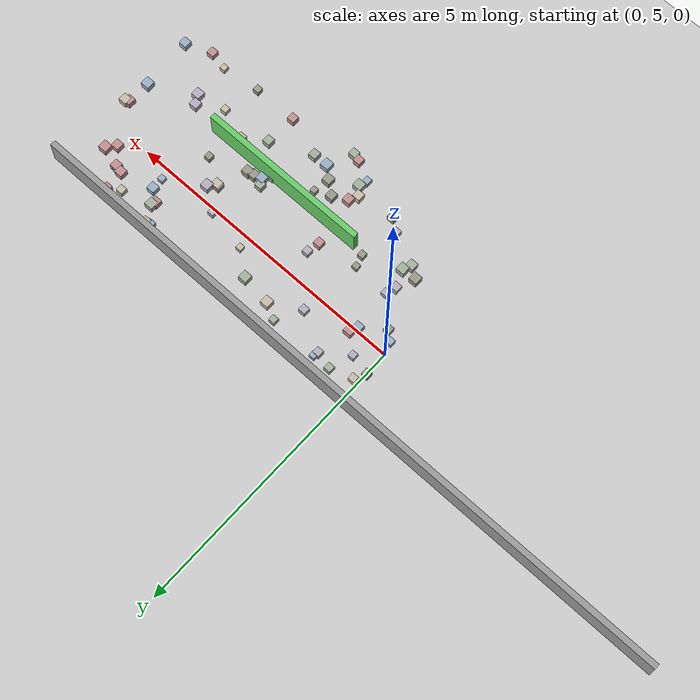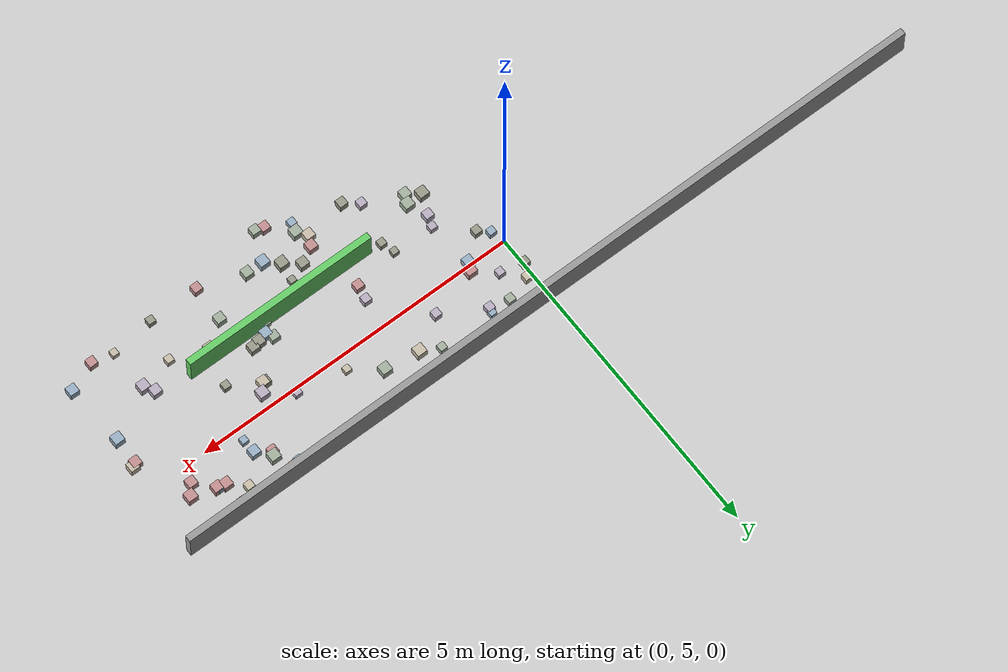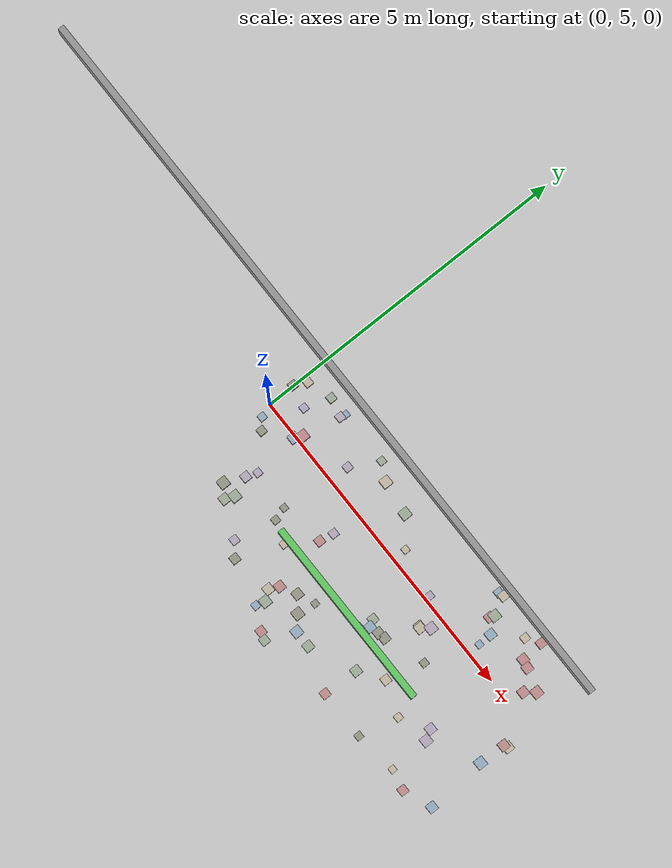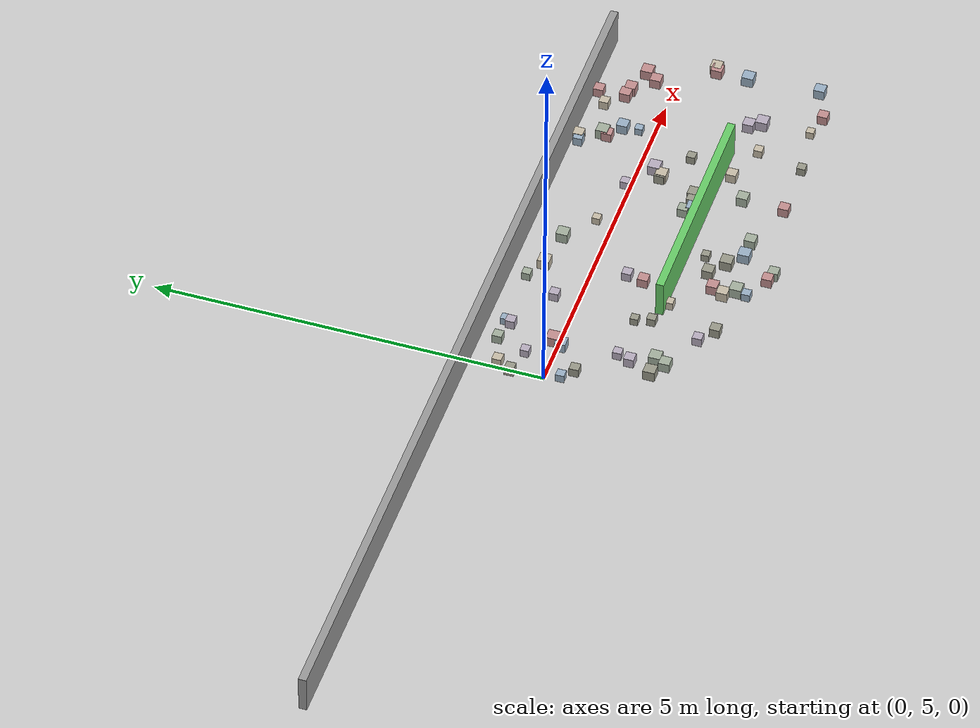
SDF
<sdf version="1.6">
 <world name="small_maze_world">
  <include><uri>model://ground_plane</uri></include>
  <include><uri>model://sun</uri></include>
  <model name="wall_north">
   <static>true</static>
   <pose>0 6 0.25 0 0 0</pose>
   <link name="link">
    <collision name="collision"><geometry><box><size>12 0.1 0.5</size></box></geometry></collision>
    <visual name="visual">
     <geometry><box><size>12 0.1 0.5</size></box></geometry>
     <material><ambient>0.6 0.6 0.6 1</ambient></material>
    </visual>
   </link>
  </model>
  <model name="maze_wall_3">
   <static>true</static>
   <pose>3 4 0.25 0 0 0</pose>
   <link name="link">
    <collision name="collision"><geometry><box><size>3 0.1 0.5</size></box></geometry></collision>
    <visual name="visual">
     <geometry><box><size>3 0.1 0.5</size></box></geometry>
     <material><ambient>0.4 0.8 0.4 1</ambient></material>
    </visual>
   </link>
  </model>
  <model name="box_9">
   <static>false</static>
   <pose>5.86 3.24 0.05 0 0 0</pose>
   <link name="link">
    <inertial>
     <mass>0.2</mass>
     <inertia><ixx>0.001</ixx><iyy>0.001</iyy><izz>0.001</izz><ixy>0</ixy><ixz>0</ixz><iyz>0</iyz></inertia>
    </inertial>
    <collision name="collision"><geometry><box><size>0.14 0.14 0.14</size></box></geometry></collision>
    <visual name="visual">
     <geometry><box><size>0.14 0.14 0.14</size></box></geometry>
     <material><ambient>0.6 0.69 0.77 1</ambient><diffuse>0.6 0.69 0.77 1</diffuse></material>
    </visual>
   </link>
  </model>
  <model name="box_12">
   <static>false</static>
   <pose>5.52 5.4 0.05 0 0 0</pose>
   <link name="link">
    <inertial>
     <mass>0.2</mass>
     <inertia><ixx>0.001</ixx><iyy>0.001</iyy><izz>0.001</izz><ixy>0</ixy><ixz>0</ixz><iyz>0</iyz></inertia>
    </inertial>
    <collision name="collision"><geometry><box><size>0.15 0.15 0.15</size></box></geometry></collision>
    <visual name="visual">
     <geometry><box><size>0.15 0.15 0.15</size></box></geometry>
     <material><ambient>0.76 0.56 0.56 1</ambient><diffuse>0.76 0.56 0.56 1</diffuse></material>
    </visual>
   </link>
  </model>
  <model name="box_13">
   <static>false</static>
   <pose>5.4 5.25 0.05 0 0 0</pose>
   <link name="link">
    <inertial>
     <mass>0.2</mass>
     <inertia><ixx>0.001</ixx><iyy>0.001</iyy><izz>0.001</izz><ixy>0</ixy><ixz>0</ixz><iyz>0</iyz></inertia>
    </inertial>
    <collision name="collision"><geometry><box><size>0.14 0.14 0.14</size></box></geometry></collision>
    <visual name="visual">
     <geometry><box><size>0.14 0.14 0.14</size></box></geometry>
     <material><ambient>0.76 0.56 0.56 1</ambient><diffuse>0.76 0.56 0.56 1</diffuse></material>
    </visual>
   </link>
  </model>
  <model name="box_16">
   <static>false</static>
   <pose>4.82 5.75 0.05 0 0 0</pose>
   <link name="link">
    <inertial>
     <mass>0.2</mass>
     <inertia><ixx>0.001</ixx><iyy>0.001</iyy><izz>0.001</izz><ixy>0</ixy><ixz>0</ixz><iyz>0</iyz></inertia>
    </inertial>
    <collision name="collision"><geometry><box><size>0.12 0.12 0.12</size></box></geometry></collision>
    <visual name="visual">
     <geometry><box><size>0.12 0.12 0.12</size></box></geometry>
     <material><ambient>0.78 0.74 0.66 1</ambient><diffuse>0.78 0.74 0.66 1</diffuse></material>
    </visual>
   </link>
  </model>
  <model name="box_20">
   <static>false</static>
   <pose>0.59 4.09 0.05 0 0 0</pose>
   <link name="link">
    <inertial>
     <mass>0.2</mass>
     <inertia><ixx>0.001</ixx><iyy>0.001</iyy><izz>0.001</izz><ixy>0</ixy><ixz>0</ixz><iyz>0</iyz></inertia>
    </inertial>
    <collision name="collision"><geometry><box><size>0.13 0.13 0.13</size></box></geometry></collision>
    <visual name="visual">
     <geometry><box><size>0.13 0.13 0.13</size></box></geometry>
     <material><ambient>0.72 0.68 0.75 1</ambient><diffuse>0.72 0.68 0.75 1</diffuse></material>
    </visual>
   </link>
  </model>
  <model name="box_22">
   <static>false</static>
   <pose>2.6 3.74 0.05 0 0 0</pose>
   <link name="link">
    <inertial>
     <mass>0.2</mass>
     <inertia><ixx>0.001</ixx><iyy>0.001</iyy><izz>0.001</izz><ixy>0</ixy><ixz>0</ixz><iyz>0</iyz></inertia>
    </inertial>
    <collision name="collision"><geometry><box><size>0.1 0.1 0.1</size></box></geometry></collision>
    <visual name="visual">
     <geometry><box><size>0.1 0.1 0.1</size></box></geometry>
     <material><ambient>0.6 0.6 0.54 1</ambient><diffuse>0.6 0.6 0.54 1</diffuse></material>
    </visual>
   </link>
  </model>
  <model name="box_24">
   <static>false</static>
   <pose>1.4 3.25 0.05 0 0 0</pose>
   <link name="link">
    <inertial>
     <mass>0.2</mass>
     <inertia><ixx>0.001</ixx><iyy>0.001</iyy><izz>0.001</izz><ixy>0</ixy><ixz>0</ixz><iyz>0</iyz></inertia>
    </inertial>
    <collision name="collision"><geometry><box><size>0.13 0.13 0.13</size></box></geometry></collision>
    <visual name="visual">
     <geometry><box><size>0.13 0.13 0.13</size></box></geometry>
     <material><ambient>0.6 0.6 0.54 1</ambient><diffuse>0.6 0.6 0.54 1</diffuse></material>
    </visual>
   </link>
  </model>
  <model name="box_25">
   <static>false</static>
   <pose>3.01 3.29 0.05 0 0 0</pose>
   <link name="link">
    <inertial>
     <mass>0.2</mass>
     <inertia><ixx>0.001</ixx><iyy>0.001</iyy><izz>0.001</izz><ixy>0</ixy><ixz>0</ixz><iyz>0</iyz></inertia>
    </inertial>
    <collision name="collision"><geometry><box><size>0.14 0.14 0.14</size></box></geometry></collision>
    <visual name="visual">
     <geometry><box><size>0.14 0.14 0.14</size></box></geometry>
     <material><ambient>0.64 0.69 0.62 1</ambient><diffuse>0.64 0.69 0.62 1</diffuse></material>
    </visual>
   </link>
  </model>
  <model name="box_31">
   <static>false</static>
   <pose>0.78 5.74 0.05 0 0 0</pose>
   <link name="link">
    <inertial>
     <mass>0.2</mass>
     <inertia><ixx>0.001</ixx><iyy>0.001</iyy><izz>0.001</izz><ixy>0</ixy><ixz>0</ixz><iyz>0</iyz></inertia>
    </inertial>
    <collision name="collision"><geometry><box><size>0.1 0.1 0.1</size></box></geometry></collision>
    <visual name="visual">
     <geometry><box><size>0.1 0.1 0.1</size></box></geometry>
     <material><ambient>0.6 0.69 0.77 1</ambient><diffuse>0.6 0.69 0.77 1</diffuse></material>
    </visual>
   </link>
  </model>
  <model name="box_46">
   <static>false</static>
   <pose>0.22 4.67 0.05 0 0 0</pose>
   <link name="link">
    <inertial>
     <mass>0.2</mass>
     <inertia><ixx>0.001</ixx><iyy>0.001</iyy><izz>0.001</izz><ixy>0</ixy><ixz>0</ixz><iyz>0</iyz></inertia>
    </inertial>
    <collision name="collision"><geometry><box><size>0.12 0.12 0.12</size></box></geometry></collision>
    <visual name="visual">
     <geometry><box><size>0.12 0.12 0.12</size></box></geometry>
     <material><ambient>0.6 0.6 0.54 1</ambient><diffuse>0.6 0.6 0.54 1</diffuse></material>
    </visual>
   </link>
  </model>
  <model name="box_49">
   <static>false</static>
   <pose>2.43 2.9 0.05 0 0 0</pose>
   <link name="link">
    <inertial>
     <mass>0.2</mass>
     <inertia><ixx>0.001</ixx><iyy>0.001</iyy><izz>0.001</izz><ixy>0</ixy><ixz>0</ixz><iyz>0</iyz></inertia>
    </inertial>
    <collision name="collision"><geometry><box><size>0.13 0.13 0.13</size></box></geometry></collision>
    <visual name="visual">
     <geometry><box><size>0.13 0.13 0.13</size></box></geometry>
     <material><ambient>0.76 0.56 0.56 1</ambient><diffuse>0.76 0.56 0.56 1</diffuse></material>
    </visual>
   </link>
  </model>
  <model name="box_53">
   <static>false</static>
   <pose>2.1 3.5 0.05 0 0 0</pose>
   <link name="link">
    <inertial>
     <mass>0.2</mass>
     <inertia><ixx>0.001</ixx><iyy>0.001</iyy><izz>0.001</izz><ixy>0</ixy><ixz>0</ixz><iyz>0</iyz></inertia>
    </inertial>
    <collision name="collision"><geometry><box><size>0.14 0.14 0.14</size></box></geometry></collision>
    <visual name="visual">
     <geometry><box><size>0.14 0.14 0.14</size></box></geometry>
     <material><ambient>0.76 0.56 0.56 1</ambient><diffuse>0.76 0.56 0.56 1</diffuse></material>
    </visual>
   </link>
  </model>
  <model name="box_54">
   <static>false</static>
   <pose>2.1 3.07 0.05 0 0 0</pose>
   <link name="link">
    <inertial>
     <mass>0.2</mass>
     <inertia><ixx>0.001</ixx><iyy>0.001</iyy><izz>0.001</izz><ixy>0</ixy><ixz>0</ixz><iyz>0</iyz></inertia>
    </inertial>
    <collision name="collision"><geometry><box><size>0.11 0.11 0.11</size></box></geometry></collision>
    <visual name="visual">
     <geometry><box><size>0.11 0.11 0.11</size></box></geometry>
     <material><ambient>0.6 0.69 0.77 1</ambient><diffuse>0.6 0.69 0.77 1</diffuse></material>
    </visual>
   </link>
  </model>
  <model name="box_59">
   <static>false</static>
   <pose>1.19 3.41 0.05 0 0 0</pose>
   <link name="link">
    <inertial>
     <mass>0.2</mass>
     <inertia><ixx>0.001</ixx><iyy>0.001</iyy><izz>0.001</izz><ixy>0</ixy><ixz>0</ixz><iyz>0</iyz></inertia>
    </inertial>
    <collision name="collision"><geometry><box><size>0.12 0.12 0.12</size></box></geometry></collision>
    <visual name="visual">
     <geometry><box><size>0.12 0.12 0.12</size></box></geometry>
     <material><ambient>0.72 0.68 0.75 1</ambient><diffuse>0.72 0.68 0.75 1</diffuse></material>
    </visual>
   </link>
  </model>
  <model name="box_71">
   <static>false</static>
   <pose>3.28 4.24 0.05 0 0 0</pose>
   <link name="link">
    <inertial>
     <mass>0.2</mass>
     <inertia><ixx>0.001</ixx><iyy>0.001</iyy><izz>0.001</izz><ixy>0</ixy><ixz>0</ixz><iyz>0</iyz></inertia>
    </inertial>
    <collision name="collision"><geometry><box><size>0.13 0.13 0.13</size></box></geometry></collision>
    <visual name="visual">
     <geometry><box><size>0.13 0.13 0.13</size></box></geometry>
     <material><ambient>0.64 0.69 0.62 1</ambient><diffuse>0.64 0.69 0.62 1</diffuse></material>
    </visual>
   </link>
  </model>
  <model name="box_83">
   <static>false</static>
   <pose>5.87 4.6 0.05 0 0 0</pose>
   <link name="link">
    <inertial>
     <mass>0.2</mass>
     <inertia><ixx>0.001</ixx><iyy>0.001</iyy><izz>0.001</izz><ixy>0</ixy><ixz>0</ixz><iyz>0</iyz></inertia>
    </inertial>
    <collision name="collision"><geometry><box><size>0.14 0.14 0.14</size></box></geometry></collision>
    <visual name="visual">
     <geometry><box><size>0.14 0.14 0.14</size></box></geometry>
     <material><ambient>0.78 0.74 0.66 1</ambient><diffuse>0.78 0.74 0.66 1</diffuse></material>
    </visual>
   </link>
  </model>
  <model name="box_84">
   <static>false</static>
   <pose>5.08 3.76 0.05 0 0 0</pose>
   <link name="link">
    <inertial>
     <mass>0.2</mass>
     <inertia><ixx>0.001</ixx><iyy>0.001</iyy><izz>0.001</izz><ixy>0</ixy><ixz>0</ixz><iyz>0</iyz></inertia>
    </inertial>
    <collision name="collision"><geometry><box><size>0.15 0.15 0.15</size></box></geometry></collision>
    <visual name="visual">
     <geometry><box><size>0.15 0.15 0.15</size></box></geometry>
     <material><ambient>0.72 0.68 0.75 1</ambient><diffuse>0.72 0.68 0.75 1</diffuse></material>
    </visual>
   </link>
  </model>
  <model name="box_88">
   <static>false</static>
   <pose>4.44 3.06 0.05 0 0 0</pose>
   <link name="link">
    <inertial>
     <mass>0.2</mass>
     <inertia><ixx>0.001</ixx><iyy>0.001</iyy><izz>0.001</izz><ixy>0</ixy><ixz>0</ixz><iyz>0</iyz></inertia>
    </inertial>
    <collision name="collision"><geometry><box><size>0.11 0.11 0.11</size></box></geometry></collision>
    <visual name="visual">
     <geometry><box><size>0.11 0.11 0.11</size></box></geometry>
     <material><ambient>0.6 0.6 0.54 1</ambient><diffuse>0.6 0.6 0.54 1</diffuse></material>
    </visual>
   </link>
  </model>
  <model name="box_98">
   <static>false</static>
   <pose>1.99 4.56 0.05 0 0 0</pose>
   <link name="link">
    <inertial>
     <mass>0.2</mass>
     <inertia><ixx>0.001</ixx><iyy>0.001</iyy><izz>0.001</izz><ixy>0</ixy><ixz>0</ixz><iyz>0</iyz></inertia>
    </inertial>
    <collision name="collision"><geometry><box><size>0.12 0.12 0.12</size></box></geometry></collision>
    <visual name="visual">
     <geometry><box><size>0.12 0.12 0.12</size></box></geometry>
     <material><ambient>0.72 0.68 0.75 1</ambient><diffuse>0.72 0.68 0.75 1</diffuse></material>
    </visual>
   </link>
  </model>
  <model name="box_109">
   <static>false</static>
   <pose>2.34 3.63 0.05 0 0 0</pose>
   <link name="link">
    <inertial>
     <mass>0.2</mass>
     <inertia><ixx>0.001</ixx><iyy>0.001</iyy><izz>0.001</izz><ixy>0</ixy><ixz>0</ixz><iyz>0</iyz></inertia>
    </inertial>
    <collision name="collision"><geometry><box><size>0.14 0.14 0.14</size></box></geometry></collision>
    <visual name="visual">
     <geometry><box><size>0.14 0.14 0.14</size></box></geometry>
     <material><ambient>0.6 0.6 0.54 1</ambient><diffuse>0.6 0.6 0.54 1</diffuse></material>
    </visual>
   </link>
  </model>
  <model name="box_116">
   <static>false</static>
   <pose>1.27 4.24 0.05 0 0 0</pose>
   <link name="link">
    <inertial>
     <mass>0.2</mass>
     <inertia><ixx>0.001</ixx><iyy>0.001</iyy><izz>0.001</izz><ixy>0</ixy><ixz>0</ixz><iyz>0</iyz></inertia>
    </inertial>
    <collision name="collision"><geometry><box><size>0.1 0.1 0.1</size></box></geometry></collision>
    <visual name="visual">
     <geometry><box><size>0.1 0.1 0.1</size></box></geometry>
     <material><ambient>0.6 0.6 0.54 1</ambient><diffuse>0.6 0.6 0.54 1</diffuse></material>
    </visual>
   </link>
  </model>
  <model name="box_121">
   <static>false</static>
   <pose>4.17 5.88 0.05 0 0 0</pose>
   <link name="link">
    <inertial>
     <mass>0.2</mass>
     <inertia><ixx>0.001</ixx><iyy>0.001</iyy><izz>0.001</izz><ixy>0</ixy><ixz>0</ixz><iyz>0</iyz></inertia>
    </inertial>
    <collision name="collision"><geometry><box><size>0.13 0.13 0.13</size></box></geometry></collision>
    <visual name="visual">
     <geometry><box><size>0.13 0.13 0.13</size></box></geometry>
     <material><ambient>0.78 0.74 0.66 1</ambient><diffuse>0.78 0.74 0.66 1</diffuse></material>
    </visual>
   </link>
  </model>
  <model name="box_122">
   <static>false</static>
   <pose>2.56 2.86 0.05 0 0 0</pose>
   <link name="link">
    <inertial>
     <mass>0.2</mass>
     <inertia><ixx>0.001</ixx><iyy>0.001</iyy><izz>0.001</izz><ixy>0</ixy><ixz>0</ixz><iyz>0</iyz></inertia>
    </inertial>
    <collision name="collision"><geometry><box><size>0.13 0.13 0.13</size></box></geometry></collision>
    <visual name="visual">
     <geometry><box><size>0.13 0.13 0.13</size></box></geometry>
     <material><ambient>0.64 0.69 0.62 1</ambient><diffuse>0.64 0.69 0.62 1</diffuse></material>
    </visual>
   </link>
  </model>
  <model name="box_123">
   <static>false</static>
   <pose>3.79 4.68 0.05 0 0 0</pose>
   <link name="link">
    <inertial>
     <mass>0.2</mass>
     <inertia><ixx>0.001</ixx><iyy>0.001</iyy><izz>0.001</izz><ixy>0</ixy><ixz>0</ixz><iyz>0</iyz></inertia>
    </inertial>
    <collision name="collision"><geometry><box><size>0.14 0.14 0.14</size></box></geometry></collision>
    <visual name="visual">
     <geometry><box><size>0.14 0.14 0.14</size></box></geometry>
     <material><ambient>0.78 0.74 0.66 1</ambient><diffuse>0.78 0.74 0.66 1</diffuse></material>
    </visual>
   </link>
  </model>
  <model name="box_132">
   <static>false</static>
   <pose>3.24 4.02 0.05 0 0 0</pose>
   <link name="link">
    <inertial>
     <mass>0.2</mass>
     <inertia><ixx>0.001</ixx><iyy>0.001</iyy><izz>0.001</izz><ixy>0</ixy><ixz>0</ixz><iyz>0</iyz></inertia>
    </inertial>
    <collision name="collision"><geometry><box><size>0.1 0.1 0.1</size></box></geometry></collision>
    <visual name="visual">
     <geometry><box><size>0.1 0.1 0.1</size></box></geometry>
     <material><ambient>0.64 0.69 0.62 1</ambient><diffuse>0.64 0.69 0.62 1</diffuse></material>
    </visual>
   </link>
  </model>
  <model name="box_134">
   <static>false</static>
   <pose>3.7 3.6 0.05 0 0 0</pose>
   <link name="link">
    <inertial>
     <mass>0.2</mass>
     <inertia><ixx>0.001</ixx><iyy>0.001</iyy><izz>0.001</izz><ixy>0</ixy><ixz>0</ixz><iyz>0</iyz></inertia>
    </inertial>
    <collision name="collision"><geometry><box><size>0.14 0.14 0.14</size></box></geometry></collision>
    <visual name="visual">
     <geometry><box><size>0.14 0.14 0.14</size></box></geometry>
     <material><ambient>0.64 0.69 0.62 1</ambient><diffuse>0.64 0.69 0.62 1</diffuse></material>
    </visual>
   </link>
  </model>
  <model name="box_140">
   <static>false</static>
   <pose>0.34 5.34 0.05 0 0 0</pose>
   <link name="link">
    <inertial>
     <mass>0.2</mass>
     <inertia><ixx>0.001</ixx><iyy>0.001</iyy><izz>0.001</izz><ixy>0</ixy><ixz>0</ixz><iyz>0</iyz></inertia>
    </inertial>
    <collision name="collision"><geometry><box><size>0.11 0.11 0.11</size></box></geometry></collision>
    <visual name="visual">
     <geometry><box><size>0.11 0.11 0.11</size></box></geometry>
     <material><ambient>0.72 0.68 0.75 1</ambient><diffuse>0.72 0.68 0.75 1</diffuse></material>
    </visual>
   </link>
  </model>
  <model name="box_147">
   <static>false</static>
   <pose>4.58 3.66 0.05 0 0 0</pose>
   <link name="link">
    <inertial>
     <mass>0.2</mass>
     <inertia><ixx>0.001</ixx><iyy>0.001</iyy><izz>0.001</izz><ixy>0</ixy><ixz>0</ixz><iyz>0</iyz></inertia>
    </inertial>
    <collision name="collision"><geometry><box><size>0.11 0.11 0.11</size></box></geometry></collision>
    <visual name="visual">
     <geometry><box><size>0.11 0.11 0.11</size></box></geometry>
     <material><ambient>0.78 0.74 0.66 1</ambient><diffuse>0.78 0.74 0.66 1</diffuse></material>
    </visual>
   </link>
  </model>
  <model name="box_163">
   <static>false</static>
   <pose>3.76 4.69 0.05 0 0 0</pose>
   <link name="link">
    <inertial>
     <mass>0.2</mass>
     <inertia><ixx>0.001</ixx><iyy>0.001</iyy><izz>0.001</izz><ixy>0</ixy><ixz>0</ixz><iyz>0</iyz></inertia>
    </inertial>
    <collision name="collision"><geometry><box><size>0.13 0.13 0.13</size></box></geometry></collision>
    <visual name="visual">
     <geometry><box><size>0.13 0.13 0.13</size></box></geometry>
     <material><ambient>0.6 0.6 0.54 1</ambient><diffuse>0.6 0.6 0.54 1</diffuse></material>
    </visual>
   </link>
  </model>
  <model name="box_166">
   <static>false</static>
   <pose>2.56 3.46 0.05 0 0 0</pose>
   <link name="link">
    <inertial>
     <mass>0.2</mass>
     <inertia><ixx>0.001</ixx><iyy>0.001</iyy><izz>0.001</izz><ixy>0</ixy><ixz>0</ixz><iyz>0</iyz></inertia>
    </inertial>
    <collision name="collision"><geometry><box><size>0.15 0.15 0.15</size></box></geometry></collision>
    <visual name="visual">
     <geometry><box><size>0.15 0.15 0.15</size></box></geometry>
     <material><ambient>0.6 0.6 0.54 1</ambient><diffuse>0.6 0.6 0.54 1</diffuse></material>
    </visual>
   </link>
  </model>
  <model name="box_174">
   <static>false</static>
   <pose>0.47 5.73 0.05 0 0 0</pose>
   <link name="link">
    <inertial>
     <mass>0.2</mass>
     <inertia><ixx>0.001</ixx><iyy>0.001</iyy><izz>0.001</izz><ixy>0</ixy><ixz>0</ixz><iyz>0</iyz></inertia>
    </inertial>
    <collision name="collision"><geometry><box><size>0.12 0.12 0.12</size></box></geometry></collision>
    <visual name="visual">
     <geometry><box><size>0.12 0.12 0.12</size></box></geometry>
     <material><ambient>0.64 0.69 0.62 1</ambient><diffuse>0.64 0.69 0.62 1</diffuse></material>
    </visual>
   </link>
  </model>
  <model name="box_180">
   <static>false</static>
   <pose>3.89 4.8 0.05 0 0 0</pose>
   <link name="link">
    <inertial>
     <mass>0.2</mass>
     <inertia><ixx>0.001</ixx><iyy>0.001</iyy><izz>0.001</izz><ixy>0</ixy><ixz>0</ixz><iyz>0</iyz></inertia>
    </inertial>
    <collision name="collision"><geometry><box><size>0.15 0.15 0.15</size></box></geometry></collision>
    <visual name="visual">
     <geometry><box><size>0.15 0.15 0.15</size></box></geometry>
     <material><ambient>0.72 0.68 0.75 1</ambient><diffuse>0.72 0.68 0.75 1</diffuse></material>
    </visual>
   </link>
  </model>
  <model name="box_185">
   <static>false</static>
   <pose>2.14 3.21 0.05 0 0 0</pose>
   <link name="link">
    <inertial>
     <mass>0.2</mass>
     <inertia><ixx>0.001</ixx><iyy>0.001</iyy><izz>0.001</izz><ixy>0</ixy><ixz>0</ixz><iyz>0</iyz></inertia>
    </inertial>
    <collision name="collision"><geometry><box><size>0.15 0.15 0.15</size></box></geometry></collision>
    <visual name="visual">
     <geometry><box><size>0.15 0.15 0.15</size></box></geometry>
     <material><ambient>0.64 0.69 0.62 1</ambient><diffuse>0.64 0.69 0.62 1</diffuse></material>
    </visual>
   </link>
  </model>
  <model name="box_205">
   <static>false</static>
   <pose>0.65 3.66 0.05 0 0 0</pose>
   <link name="link">
    <inertial>
     <mass>0.2</mass>
     <inertia><ixx>0.001</ixx><iyy>0.001</iyy><izz>0.001</izz><ixy>0</ixy><ixz>0</ixz><iyz>0</iyz></inertia>
    </inertial>
    <collision name="collision"><geometry><box><size>0.14 0.14 0.14</size></box></geometry></collision>
    <visual name="visual">
     <geometry><box><size>0.14 0.14 0.14</size></box></geometry>
     <material><ambient>0.64 0.69 0.62 1</ambient><diffuse>0.64 0.69 0.62 1</diffuse></material>
    </visual>
   </link>
  </model>
  <model name="box_208">
   <static>false</static>
   <pose>3.68 3.06 0.05 0 0 0</pose>
   <link name="link">
    <inertial>
     <mass>0.2</mass>
     <inertia><ixx>0.001</ixx><iyy>0.001</iyy><izz>0.001</izz><ixy>0</ixy><ixz>0</ixz><iyz>0</iyz></inertia>
    </inertial>
    <collision name="collision"><geometry><box><size>0.13 0.13 0.13</size></box></geometry></collision>
    <visual name="visual">
     <geometry><box><size>0.13 0.13 0.13</size></box></geometry>
     <material><ambient>0.76 0.56 0.56 1</ambient><diffuse>0.76 0.56 0.56 1</diffuse></material>
    </visual>
   </link>
  </model>
  <model name="box_215">
   <static>false</static>
   <pose>5.13 5.53 0.05 0 0 0</pose>
   <link name="link">
    <inertial>
     <mass>0.2</mass>
     <inertia><ixx>0.001</ixx><iyy>0.001</iyy><izz>0.001</izz><ixy>0</ixy><ixz>0</ixz><iyz>0</iyz></inertia>
    </inertial>
    <collision name="collision"><geometry><box><size>0.11 0.11 0.11</size></box></geometry></collision>
    <visual name="visual">
     <geometry><box><size>0.11 0.11 0.11</size></box></geometry>
     <material><ambient>0.6 0.69 0.77 1</ambient><diffuse>0.6 0.69 0.77 1</diffuse></material>
    </visual>
   </link>
  </model>
  <model name="box_227">
   <static>false</static>
   <pose>4.99 3.91 0.05 0 0 0</pose>
   <link name="link">
    <inertial>
     <mass>0.2</mass>
     <inertia><ixx>0.001</ixx><iyy>0.001</iyy><izz>0.001</izz><ixy>0</ixy><ixz>0</ixz><iyz>0</iyz></inertia>
    </inertial>
    <collision name="collision"><geometry><box><size>0.14 0.14 0.14</size></box></geometry></collision>
    <visual name="visual">
     <geometry><box><size>0.14 0.14 0.14</size></box></geometry>
     <material><ambient>0.72 0.68 0.75 1</ambient><diffuse>0.72 0.68 0.75 1</diffuse></material>
    </visual>
   </link>
  </model>
  <model name="box_229">
   <static>false</static>
   <pose>5.02 5.88 0.05 0 0 0</pose>
   <link name="link">
    <inertial>
     <mass>0.2</mass>
     <inertia><ixx>0.001</ixx><iyy>0.001</iyy><izz>0.001</izz><ixy>0</ixy><ixz>0</ixz><iyz>0</iyz></inertia>
    </inertial>
    <collision name="collision"><geometry><box><size>0.13 0.13 0.13</size></box></geometry></collision>
    <visual name="visual">
     <geometry><box><size>0.13 0.13 0.13</size></box></geometry>
     <material><ambient>0.76 0.56 0.56 1</ambient><diffuse>0.76 0.56 0.56 1</diffuse></material>
    </visual>
   </link>
  </model>
  <model name="box_248">
   <static>false</static>
   <pose>3.34 4.14 0.05 0 0 0</pose>
   <link name="link">
    <inertial>
     <mass>0.2</mass>
     <inertia><ixx>0.001</ixx><iyy>0.001</iyy><izz>0.001</izz><ixy>0</ixy><ixz>0</ixz><iyz>0</iyz></inertia>
    </inertial>
    <collision name="collision"><geometry><box><size>0.14 0.14 0.14</size></box></geometry></collision>
    <visual name="visual">
     <geometry><box><size>0.14 0.14 0.14</size></box></geometry>
     <material><ambient>0.6 0.69 0.77 1</ambient><diffuse>0.6 0.69 0.77 1</diffuse></material>
    </visual>
   </link>
  </model>
  <model name="box_251">
   <static>false</static>
   <pose>5.42 3.07 0.05 0 0 0</pose>
   <link name="link">
    <inertial>
     <mass>0.2</mass>
     <inertia><ixx>0.001</ixx><iyy>0.001</iyy><izz>0.001</izz><ixy>0</ixy><ixz>0</ixz><iyz>0</iyz></inertia>
    </inertial>
    <collision name="collision"><geometry><box><size>0.13 0.13 0.13</size></box></geometry></collision>
    <visual name="visual">
     <geometry><box><size>0.13 0.13 0.13</size></box></geometry>
     <material><ambient>0.76 0.56 0.56 1</ambient><diffuse>0.76 0.56 0.56 1</diffuse></material>
    </visual>
   </link>
  </model>
  <model name="box_256">
   <static>false</static>
   <pose>4.06 3.85 0.05 0 0 0</pose>
   <link name="link">
    <inertial>
     <mass>0.2</mass>
     <inertia><ixx>0.001</ixx><iyy>0.001</iyy><izz>0.001</izz><ixy>0</ixy><ixz>0</ixz><iyz>0</iyz></inertia>
    </inertial>
    <collision name="collision"><geometry><box><size>0.13 0.13 0.13</size></box></geometry></collision>
    <visual name="visual">
     <geometry><box><size>0.13 0.13 0.13</size></box></geometry>
     <material><ambient>0.78 0.74 0.66 1</ambient><diffuse>0.78 0.74 0.66 1</diffuse></material>
    </visual>
   </link>
  </model>
  <model name="box_257">
   <static>false</static>
   <pose>0.71 3.8 0.05 0 0 0</pose>
   <link name="link">
    <inertial>
     <mass>0.2</mass>
     <inertia><ixx>0.001</ixx><iyy>0.001</iyy><izz>0.001</izz><ixy>0</ixy><ixz>0</ixz><iyz>0</iyz></inertia>
    </inertial>
    <collision name="collision"><geometry><box><size>0.15 0.15 0.15</size></box></geometry></collision>
    <visual name="visual">
     <geometry><box><size>0.15 0.15 0.15</size></box></geometry>
     <material><ambient>0.64 0.69 0.62 1</ambient><diffuse>0.64 0.69 0.62 1</diffuse></material>
    </visual>
   </link>
  </model>
  <model name="box_281">
   <static>false</static>
   <pose>0.58 4.96 0.05 0 0 0</pose>
   <link name="link">
    <inertial>
     <mass>0.2</mass>
     <inertia><ixx>0.001</ixx><iyy>0.001</iyy><izz>0.001</izz><ixy>0</ixy><ixz>0</ixz><iyz>0</iyz></inertia>
    </inertial>
    <collision name="collision"><geometry><box><size>0.14 0.14 0.14</size></box></geometry></collision>
    <visual name="visual">
     <geometry><box><size>0.14 0.14 0.14</size></box></geometry>
     <material><ambient>0.6 0.69 0.77 1</ambient><diffuse>0.6 0.69 0.77 1</diffuse></material>
    </visual>
   </link>
  </model>
  <model name="box_284">
   <static>false</static>
   <pose>5.81 4.57 0.05 0 0 0</pose>
   <link name="link">
    <inertial>
     <mass>0.2</mass>
     <inertia><ixx>0.001</ixx><iyy>0.001</iyy><izz>0.001</izz><ixy>0</ixy><ixz>0</ixz><iyz>0</iyz></inertia>
    </inertial>
    <collision name="collision"><geometry><box><size>0.14 0.14 0.14</size></box></geometry></collision>
    <visual name="visual">
     <geometry><box><size>0.14 0.14 0.14</size></box></geometry>
     <material><ambient>0.76 0.56 0.56 1</ambient><diffuse>0.76 0.56 0.56 1</diffuse></material>
    </visual>
   </link>
  </model>
  <model name="box_288">
   <static>false</static>
   <pose>3.48 4.18 0.05 0 0 0</pose>
   <link name="link">
    <inertial>
     <mass>0.2</mass>
     <inertia><ixx>0.001</ixx><iyy>0.001</iyy><izz>0.001</izz><ixy>0</ixy><ixz>0</ixz><iyz>0</iyz></inertia>
    </inertial>
    <collision name="collision"><geometry><box><size>0.14 0.14 0.14</size></box></geometry></collision>
    <visual name="visual">
     <geometry><box><size>0.14 0.14 0.14</size></box></geometry>
     <material><ambient>0.6 0.6 0.54 1</ambient><diffuse>0.6 0.6 0.54 1</diffuse></material>
    </visual>
   </link>
  </model>
  <model name="box_290">
   <static>false</static>
   <pose>0.65 4.26 0.05 0 0 0</pose>
   <link name="link">
    <inertial>
     <mass>0.2</mass>
     <inertia><ixx>0.001</ixx><iyy>0.001</iyy><izz>0.001</izz><ixy>0</ixy><ixz>0</ixz><iyz>0</iyz></inertia>
    </inertial>
    <collision name="collision"><geometry><box><size>0.11 0.11 0.11</size></box></geometry></collision>
    <visual name="visual">
     <geometry><box><size>0.11 0.11 0.11</size></box></geometry>
     <material><ambient>0.72 0.68 0.75 1</ambient><diffuse>0.72 0.68 0.75 1</diffuse></material>
    </visual>
   </link>
  </model>
  <model name="box_293">
   <static>false</static>
   <pose>4.21 4.42 0.05 0 0 0</pose>
   <link name="link">
    <inertial>
     <mass>0.2</mass>
     <inertia><ixx>0.001</ixx><iyy>0.001</iyy><izz>0.001</izz><ixy>0</ixy><ixz>0</ixz><iyz>0</iyz></inertia>
    </inertial>
    <collision name="collision"><geometry><box><size>0.11 0.11 0.11</size></box></geometry></collision>
    <visual name="visual">
     <geometry><box><size>0.11 0.11 0.11</size></box></geometry>
     <material><ambient>0.6 0.6 0.54 1</ambient><diffuse>0.6 0.6 0.54 1</diffuse></material>
    </visual>
   </link>
  </model>
  <model name="box_295">
   <static>false</static>
   <pose>0.09 5.61 0.05 0 0 0</pose>
   <link name="link">
    <inertial>
     <mass>0.2</mass>
     <inertia><ixx>0.001</ixx><iyy>0.001</iyy><izz>0.001</izz><ixy>0</ixy><ixz>0</ixz><iyz>0</iyz></inertia>
    </inertial>
    <collision name="collision"><geometry><box><size>0.12 0.12 0.12</size></box></geometry></collision>
    <visual name="visual">
     <geometry><box><size>0.12 0.12 0.12</size></box></geometry>
     <material><ambient>0.78 0.74 0.66 1</ambient><diffuse>0.78 0.74 0.66 1</diffuse></material>
    </visual>
   </link>
  </model>
  <model name="box_296">
   <static>false</static>
   <pose>1.88 5.59 0.05 0 0 0</pose>
   <link name="link">
    <inertial>
     <mass>0.2</mass>
     <inertia><ixx>0.001</ixx><iyy>0.001</iyy><izz>0.001</izz><ixy>0</ixy><ixz>0</ixz><iyz>0</iyz></inertia>
    </inertial>
    <collision name="collision"><geometry><box><size>0.15 0.15 0.15</size></box></geometry></collision>
    <visual name="visual">
     <geometry><box><size>0.15 0.15 0.15</size></box></geometry>
     <material><ambient>0.78 0.74 0.66 1</ambient><diffuse>0.78 0.74 0.66 1</diffuse></material>
    </visual>
   </link>
  </model>
  <model name="box_316">
   <static>false</static>
   <pose>1.61 5.73 0.05 0 0 0</pose>
   <link name="link">
    <inertial>
     <mass>0.2</mass>
     <inertia><ixx>0.001</ixx><iyy>0.001</iyy><izz>0.001</izz><ixy>0</ixy><ixz>0</ixz><iyz>0</iyz></inertia>
    </inertial>
    <collision name="collision"><geometry><box><size>0.11 0.11 0.11</size></box></geometry></collision>
    <visual name="visual">
     <geometry><box><size>0.11 0.11 0.11</size></box></geometry>
     <material><ambient>0.64 0.69 0.62 1</ambient><diffuse>0.64 0.69 0.62 1</diffuse></material>
    </visual>
   </link>
  </model>
  <model name="box_320">
   <static>false</static>
   <pose>0.76 5.66 0.05 0 0 0</pose>
   <link name="link">
    <inertial>
     <mass>0.2</mass>
     <inertia><ixx>0.001</ixx><iyy>0.001</iyy><izz>0.001</izz><ixy>0</ixy><ixz>0</ixz><iyz>0</iyz></inertia>
    </inertial>
    <collision name="collision"><geometry><box><size>0.12 0.12 0.12</size></box></geometry></collision>
    <visual name="visual">
     <geometry><box><size>0.12 0.12 0.12</size></box></geometry>
     <material><ambient>0.72 0.68 0.75 1</ambient><diffuse>0.72 0.68 0.75 1</diffuse></material>
    </visual>
   </link>
  </model>
  <model name="box_323">
   <static>false</static>
   <pose>5.17 5.51 0.05 0 0 0</pose>
   <link name="link">
    <inertial>
     <mass>0.2</mass>
     <inertia><ixx>0.001</ixx><iyy>0.001</iyy><izz>0.001</izz><ixy>0</ixy><ixz>0</ixz><iyz>0</iyz></inertia>
    </inertial>
    <collision name="collision"><geometry><box><size>0.14 0.14 0.14</size></box></geometry></collision>
    <visual name="visual">
     <geometry><box><size>0.14 0.14 0.14</size></box></geometry>
     <material><ambient>0.76 0.56 0.56 1</ambient><diffuse>0.76 0.56 0.56 1</diffuse></material>
    </visual>
   </link>
  </model>
  <model name="box_324">
   <static>false</static>
   <pose>0.07 4.8 0.05 0 0 0</pose>
   <link name="link">
    <inertial>
     <mass>0.2</mass>
     <inertia><ixx>0.001</ixx><iyy>0.001</iyy><izz>0.001</izz><ixy>0</ixy><ixz>0</ixz><iyz>0</iyz></inertia>
    </inertial>
    <collision name="collision"><geometry><box><size>0.11 0.11 0.11</size></box></geometry></collision>
    <visual name="visual">
     <geometry><box><size>0.11 0.11 0.11</size></box></geometry>
     <material><ambient>0.6 0.69 0.77 1</ambient><diffuse>0.6 0.69 0.77 1</diffuse></material>
    </visual>
   </link>
  </model>
  <model name="box_326">
   <static>false</static>
   <pose>2.4 5.52 0.05 0 0 0</pose>
   <link name="link">
    <inertial>
     <mass>0.2</mass>
     <inertia><ixx>0.001</ixx><iyy>0.001</iyy><izz>0.001</izz><ixy>0</ixy><ixz>0</ixz><iyz>0</iyz></inertia>
    </inertial>
    <collision name="collision"><geometry><box><size>0.15 0.15 0.15</size></box></geometry></collision>
    <visual name="visual">
     <geometry><box><size>0.15 0.15 0.15</size></box></geometry>
     <material><ambient>0.64 0.69 0.62 1</ambient><diffuse>0.64 0.69 0.62 1</diffuse></material>
    </visual>
   </link>
  </model>
  <model name="box_329">
   <static>false</static>
   <pose>4.48 5.4 0.05 0 0 0</pose>
   <link name="link">
    <inertial>
     <mass>0.2</mass>
     <inertia><ixx>0.001</ixx><iyy>0.001</iyy><izz>0.001</izz><ixy>0</ixy><ixz>0</ixz><iyz>0</iyz></inertia>
    </inertial>
    <collision name="collision"><geometry><box><size>0.14 0.14 0.14</size></box></geometry></collision>
    <visual name="visual">
     <geometry><box><size>0.14 0.14 0.14</size></box></geometry>
     <material><ambient>0.6 0.69 0.77 1</ambient><diffuse>0.6 0.69 0.77 1</diffuse></material>
    </visual>
   </link>
  </model>
  <model name="box_330">
   <static>false</static>
   <pose>3.59 4.2 0.05 0 0 0</pose>
   <link name="link">
    <inertial>
     <mass>0.2</mass>
     <inertia><ixx>0.001</ixx><iyy>0.001</iyy><izz>0.001</izz><ixy>0</ixy><ixz>0</ixz><iyz>0</iyz></inertia>
    </inertial>
    <collision name="collision"><geometry><box><size>0.14 0.14 0.14</size></box></geometry></collision>
    <visual name="visual">
     <geometry><box><size>0.14 0.14 0.14</size></box></geometry>
     <material><ambient>0.6 0.6 0.54 1</ambient><diffuse>0.6 0.6 0.54 1</diffuse></material>
    </visual>
   </link>
  </model>
  <model name="box_335">
   <static>false</static>
   <pose>4.31 5.61 0.05 0 0 0</pose>
   <link name="link">
    <inertial>
     <mass>0.2</mass>
     <inertia><ixx>0.001</ixx><iyy>0.001</iyy><izz>0.001</izz><ixy>0</ixy><ixz>0</ixz><iyz>0</iyz></inertia>
    </inertial>
    <collision name="collision"><geometry><box><size>0.15 0.15 0.15</size></box></geometry></collision>
    <visual name="visual">
     <geometry><box><size>0.15 0.15 0.15</size></box></geometry>
     <material><ambient>0.64 0.69 0.62 1</ambient><diffuse>0.64 0.69 0.62 1</diffuse></material>
    </visual>
   </link>
  </model>
  <model name="box_347">
   <static>false</static>
   <pose>2.03 3.35 0.05 0 0 0</pose>
   <link name="link">
    <inertial>
     <mass>0.2</mass>
     <inertia><ixx>0.001</ixx><iyy>0.001</iyy><izz>0.001</izz><ixy>0</ixy><ixz>0</ixz><iyz>0</iyz></inertia>
    </inertial>
    <collision name="collision"><geometry><box><size>0.14 0.14 0.14</size></box></geometry></collision>
    <visual name="visual">
     <geometry><box><size>0.14 0.14 0.14</size></box></geometry>
     <material><ambient>0.78 0.74 0.66 1</ambient><diffuse>0.78 0.74 0.66 1</diffuse></material>
    </visual>
   </link>
  </model>
  <model name="box_353">
   <static>false</static>
   <pose>3.52 5.07 0.05 0 0 0</pose>
   <link name="link">
    <inertial>
     <mass>0.2</mass>
     <inertia><ixx>0.001</ixx><iyy>0.001</iyy><izz>0.001</izz><ixy>0</ixy><ixz>0</ixz><iyz>0</iyz></inertia>
    </inertial>
    <collision name="collision"><geometry><box><size>0.11 0.11 0.11</size></box></geometry></collision>
    <visual name="visual">
     <geometry><box><size>0.11 0.11 0.11</size></box></geometry>
     <material><ambient>0.72 0.68 0.75 1</ambient><diffuse>0.72 0.68 0.75 1</diffuse></material>
    </visual>
   </link>
  </model>
  <model name="box_357">
   <static>false</static>
   <pose>4.28 5.54 0.05 0 0 0</pose>
   <link name="link">
    <inertial>
     <mass>0.2</mass>
     <inertia><ixx>0.001</ixx><iyy>0.001</iyy><izz>0.001</izz><ixy>0</ixy><ixz>0</ixz><iyz>0</iyz></inertia>
    </inertial>
    <collision name="collision"><geometry><box><size>0.13 0.13 0.13</size></box></geometry></collision>
    <visual name="visual">
     <geometry><box><size>0.13 0.13 0.13</size></box></geometry>
     <material><ambient>0.76 0.56 0.56 1</ambient><diffuse>0.76 0.56 0.56 1</diffuse></material>
    </visual>
   </link>
  </model>
  <model name="box_363">
   <static>false</static>
   <pose>2.75 3.29 0.05 0 0 0</pose>
   <link name="link">
    <inertial>
     <mass>0.2</mass>
     <inertia><ixx>0.001</ixx><iyy>0.001</iyy><izz>0.001</izz><ixy>0</ixy><ixz>0</ixz><iyz>0</iyz></inertia>
    </inertial>
    <collision name="collision"><geometry><box><size>0.15 0.15 0.15</size></box></geometry></collision>
    <visual name="visual">
     <geometry><box><size>0.15 0.15 0.15</size></box></geometry>
     <material><ambient>0.6 0.69 0.77 1</ambient><diffuse>0.6 0.69 0.77 1</diffuse></material>
    </visual>
   </link>
  </model>
  <model name="box_364">
   <static>false</static>
   <pose>4.49 5.19 0.05 0 0 0</pose>
   <link name="link">
    <inertial>
     <mass>0.2</mass>
     <inertia><ixx>0.001</ixx><iyy>0.001</iyy><izz>0.001</izz><ixy>0</ixy><ixz>0</ixz><iyz>0</iyz></inertia>
    </inertial>
    <collision name="collision"><geometry><box><size>0.1 0.1 0.1</size></box></geometry></collision>
    <visual name="visual">
     <geometry><box><size>0.1 0.1 0.1</size></box></geometry>
     <material><ambient>0.6 0.69 0.77 1</ambient><diffuse>0.6 0.69 0.77 1</diffuse></material>
    </visual>
   </link>
  </model>
  <model name="box_379">
   <static>false</static>
   <pose>0.46 3.79 0.05 0 0 0</pose>
   <link name="link">
    <inertial>
     <mass>0.2</mass>
     <inertia><ixx>0.001</ixx><iyy>0.001</iyy><izz>0.001</izz><ixy>0</ixy><ixz>0</ixz><iyz>0</iyz></inertia>
    </inertial>
    <collision name="collision"><geometry><box><size>0.15 0.15 0.15</size></box></geometry></collision>
    <visual name="visual">
     <geometry><box><size>0.15 0.15 0.15</size></box></geometry>
     <material><ambient>0.6 0.6 0.54 1</ambient><diffuse>0.6 0.6 0.54 1</diffuse></material>
    </visual>
   </link>
  </model>
  <model name="box_381">
   <static>false</static>
   <pose>1.95 4.34 0.05 0 0 0</pose>
   <link name="link">
    <inertial>
     <mass>0.2</mass>
     <inertia><ixx>0.001</ixx><iyy>0.001</iyy><izz>0.001</izz><ixy>0</ixy><ixz>0</ixz><iyz>0</iyz></inertia>
    </inertial>
    <collision name="collision"><geometry><box><size>0.13 0.13 0.13</size></box></geometry></collision>
    <visual name="visual">
     <geometry><box><size>0.13 0.13 0.13</size></box></geometry>
     <material><ambient>0.76 0.56 0.56 1</ambient><diffuse>0.76 0.56 0.56 1</diffuse></material>
    </visual>
   </link>
  </model>
  <model name="box_399">
   <static>false</static>
   <pose>4.09 5.86 0.05 0 0 0</pose>
   <link name="link">
    <inertial>
     <mass>0.2</mass>
     <inertia><ixx>0.001</ixx><iyy>0.001</iyy><izz>0.001</izz><ixy>0</ixy><ixz>0</ixz><iyz>0</iyz></inertia>
    </inertial>
    <collision name="collision"><geometry><box><size>0.12 0.12 0.12</size></box></geometry></collision>
    <visual name="visual">
     <geometry><box><size>0.12 0.12 0.12</size></box></geometry>
     <material><ambient>0.6 0.69 0.77 1</ambient><diffuse>0.6 0.69 0.77 1</diffuse></material>
    </visual>
   </link>
  </model>
  <model name="box_400">
   <static>false</static>
   <pose>0.64 5.08 0.05 0 0 0</pose>
   <link name="link">
    <inertial>
     <mass>0.2</mass>
     <inertia><ixx>0.001</ixx><iyy>0.001</iyy><izz>0.001</izz><ixy>0</ixy><ixz>0</ixz><iyz>0</iyz></inertia>
    </inertial>
    <collision name="collision"><geometry><box><size>0.15 0.15 0.15</size></box></geometry></collision>
    <visual name="visual">
     <geometry><box><size>0.15 0.15 0.15</size></box></geometry>
     <material><ambient>0.76 0.56 0.56 1</ambient><diffuse>0.76 0.56 0.56 1</diffuse></material>
    </visual>
   </link>
  </model>
  <model name="box_404">
   <static>false</static>
   <pose>1.38 5.3 0.05 0 0 0</pose>
   <link name="link">
    <inertial>
     <mass>0.2</mass>
     <inertia><ixx>0.001</ixx><iyy>0.001</iyy><izz>0.001</izz><ixy>0</ixy><ixz>0</ixz><iyz>0</iyz></inertia>
    </inertial>
    <collision name="collision"><geometry><box><size>0.12 0.12 0.12</size></box></geometry></collision>
    <visual name="visual">
     <geometry><box><size>0.12 0.12 0.12</size></box></geometry>
     <material><ambient>0.72 0.68 0.75 1</ambient><diffuse>0.72 0.68 0.75 1</diffuse></material>
    </visual>
   </link>
  </model>
  <model name="box_411">
   <static>false</static>
   <pose>5.1 3.14 0.05 0 0 0</pose>
   <link name="link">
    <inertial>
     <mass>0.2</mass>
     <inertia><ixx>0.001</ixx><iyy>0.001</iyy><izz>0.001</izz><ixy>0</ixy><ixz>0</ixz><iyz>0</iyz></inertia>
    </inertial>
    <collision name="collision"><geometry><box><size>0.1 0.1 0.1</size></box></geometry></collision>
    <visual name="visual">
     <geometry><box><size>0.1 0.1 0.1</size></box></geometry>
     <material><ambient>0.78 0.74 0.66 1</ambient><diffuse>0.78 0.74 0.66 1</diffuse></material>
    </visual>
   </link>
  </model>
  <model name="box_429">
   <static>false</static>
   <pose>5.04 5.54 0.05 0 0 0</pose>
   <link name="link">
    <inertial>
     <mass>0.2</mass>
     <inertia><ixx>0.001</ixx><iyy>0.001</iyy><izz>0.001</izz><ixy>0</ixy><ixz>0</ixz><iyz>0</iyz></inertia>
    </inertial>
    <collision name="collision"><geometry><box><size>0.14 0.14 0.14</size></box></geometry></collision>
    <visual name="visual">
     <geometry><box><size>0.14 0.14 0.14</size></box></geometry>
     <material><ambient>0.76 0.56 0.56 1</ambient><diffuse>0.76 0.56 0.56 1</diffuse></material>
    </visual>
   </link>
  </model>
  <model name="box_431">
   <static>false</static>
   <pose>-0.01 5.42 0.05 0 0 0</pose>
   <link name="link">
    <inertial>
     <mass>0.2</mass>
     <inertia><ixx>0.001</ixx><iyy>0.001</iyy><izz>0.001</izz><ixy>0</ixy><ixz>0</ixz><iyz>0</iyz></inertia>
    </inertial>
    <collision name="collision"><geometry><box><size>0.12 0.12 0.12</size></box></geometry></collision>
    <visual name="visual">
     <geometry><box><size>0.12 0.12 0.12</size></box></geometry>
     <material><ambient>0.6 0.6 0.54 1</ambient><diffuse>0.6 0.6 0.54 1</diffuse></material>
    </visual>
   </link>
  </model>
  <model name="box_436">
   <static>false</static>
   <pose>5.8 4.16 0.05 0 0 0</pose>
   <link name="link">
    <inertial>
     <mass>0.2</mass>
     <inertia><ixx>0.001</ixx><iyy>0.001</iyy><izz>0.001</izz><ixy>0</ixy><ixz>0</ixz><iyz>0</iyz></inertia>
    </inertial>
    <collision name="collision"><geometry><box><size>0.15 0.15 0.15</size></box></geometry></collision>
    <visual name="visual">
     <geometry><box><size>0.15 0.15 0.15</size></box></geometry>
     <material><ambient>0.6 0.69 0.77 1</ambient><diffuse>0.6 0.69 0.77 1</diffuse></material>
    </visual>
   </link>
  </model>
  <model name="box_440">
   <static>false</static>
   <pose>1.33 4.04 0.05 0 0 0</pose>
   <link name="link">
    <inertial>
     <mass>0.2</mass>
     <inertia><ixx>0.001</ixx><iyy>0.001</iyy><izz>0.001</izz><ixy>0</ixy><ixz>0</ixz><iyz>0</iyz></inertia>
    </inertial>
    <collision name="collision"><geometry><box><size>0.11 0.11 0.11</size></box></geometry></collision>
    <visual name="visual">
     <geometry><box><size>0.11 0.11 0.11</size></box></geometry>
     <material><ambient>0.6 0.6 0.54 1</ambient><diffuse>0.6 0.6 0.54 1</diffuse></material>
    </visual>
   </link>
  </model>
  <model name="box_443">
   <static>false</static>
   <pose>2.8 5.21 0.05 0 0 0</pose>
   <link name="link">
    <inertial>
     <mass>0.2</mass>
     <inertia><ixx>0.001</ixx><iyy>0.001</iyy><izz>0.001</izz><ixy>0</ixy><ixz>0</ixz><iyz>0</iyz></inertia>
    </inertial>
    <collision name="collision"><geometry><box><size>0.1 0.1 0.1</size></box></geometry></collision>
    <visual name="visual">
     <geometry><box><size>0.1 0.1 0.1</size></box></geometry>
     <material><ambient>0.78 0.74 0.66 1</ambient><diffuse>0.78 0.74 0.66 1</diffuse></material>
    </visual>
   </link>
  </model>
  <model name="box_444">
   <static>false</static>
   <pose>1.67 3.92 0.05 0 0 0</pose>
   <link name="link">
    <inertial>
     <mass>0.2</mass>
     <inertia><ixx>0.001</ixx><iyy>0.001</iyy><izz>0.001</izz><ixy>0</ixy><ixz>0</ixz><iyz>0</iyz></inertia>
    </inertial>
    <collision name="collision"><geometry><box><size>0.11 0.11 0.11</size></box></geometry></collision>
    <visual name="visual">
     <geometry><box><size>0.11 0.11 0.11</size></box></geometry>
     <material><ambient>0.78 0.74 0.66 1</ambient><diffuse>0.78 0.74 0.66 1</diffuse></material>
    </visual>
   </link>
  </model>
 </world>
</sdf>
